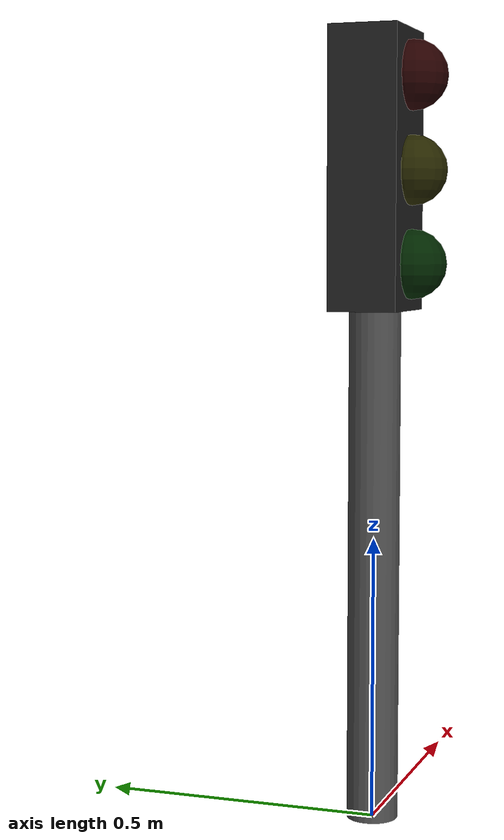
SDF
<?xml version="1.0" ?>
<sdf version="1.6">
  <model name="traffic_light">
    <static>true</static>

    <!-- Pole + housing. Separate from the lens links below so the
         plugin can toggle each lens's own visual without touching
         these. -->
    <link name="pole">
      <pose>0 0 0 0 0 0</pose>
      <visual name="pole_visual">
        <pose>0 0 0.45 0 0 0</pose>
        <geometry><cylinder><radius>0.045</radius><length>0.9</length></cylinder></geometry>
        <material><script><name>Gazebo/DarkGrey</name></script></material>
      </visual>
      <collision name="pole_collision">
        <pose>0 0 0.45 0 0 0</pose>
        <geometry><cylinder><radius>0.045</radius><length>0.9</length></cylinder></geometry>
      </collision>
      <visual name="head_visual">
        <pose>0 0 1.14 0 0 0</pose>
        <geometry><box><size>0.18 0.12 0.48</size></box></geometry>
        <material><script><name>Gazebo/Black</name></script></material>
      </visual>
    </link>

    <link name="red_light_link">
      <pose>0 -0.065 1.30 0 0 0</pose>
      <visual name="red_visual">
        <geometry><sphere><radius>0.06</radius></sphere></geometry>
        <material>
          <ambient>0.15 0 0 1</ambient>
          <diffuse>0.15 0 0 1</diffuse>
          <emissive>0.15 0 0 1</emissive>
        </material>
      </visual>
    </link>

    <link name="yellow_light_link">
      <pose>0 -0.065 1.14 0 0 0</pose>
      <visual name="yellow_visual">
        <geometry><sphere><radius>0.06</radius></sphere></geometry>
        <material>
          <ambient>0.15 0.15 0 1</ambient>
          <diffuse>0.15 0.15 0 1</diffuse>
          <emissive>0.15 0.15 0 1</emissive>
        </material>
      </visual>
    </link>

    <link name="green_light_link">
      <pose>0 -0.065 0.98 0 0 0</pose>
      <visual name="green_visual">
        <geometry><sphere><radius>0.06</radius></sphere></geometry>
        <material>
          <ambient>0 0.15 0 1</ambient>
          <diffuse>0 0.15 0 1</diffuse>
          <emissive>0 0.15 0 1</emissive>
        </material>
      </visual>
    </link>

    <!-- Runtime color control: publish std_msgs/String "red"|"yellow"|
         "green"|"off" on /traffic_light/color. See
         limo_plugin/src/traffic_light_plugin.cpp. -->
    <plugin name="traffic_light_plugin" filename="libtraffic_light_plugin.so">
      <topic>/traffic_light/color</topic>
      <initial_color>red</initial_color>
    </plugin>
  </model>
</sdf>
